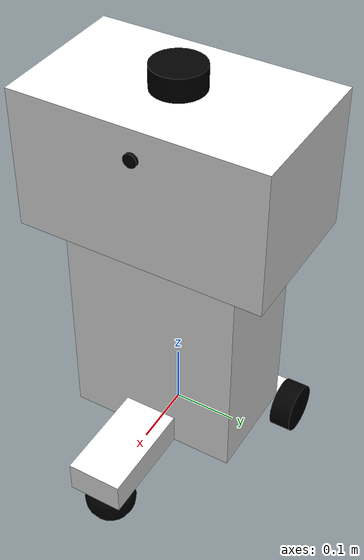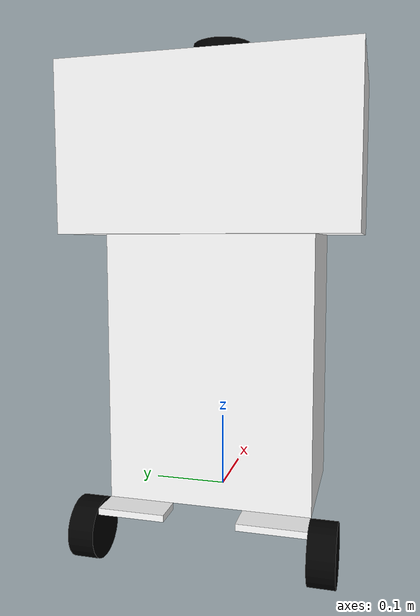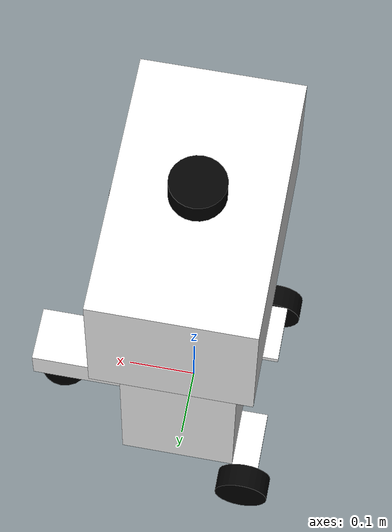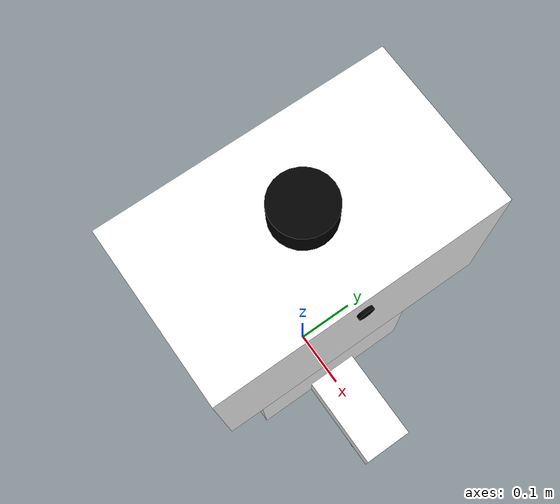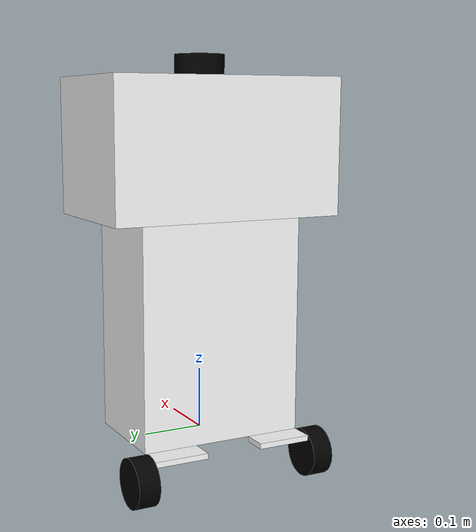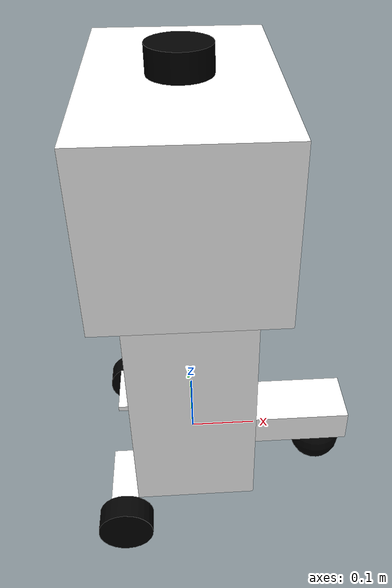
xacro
<?xml version="1.0" encoding="UTF-8"?>
<robot xmlns:xacro="http://wiki.ros.org/wiki/xacro" name="robot">

   <!-- args -->
   <xacro:arg name="use_ros2_control" default="true"/>
   <xacro:arg name="sim_mode" default="false"/>

   <!-- initialize xacro properties -->
   <xacro:include filename="inertial_macros.xacro"/>
   <xacro:include filename="properties.xacro"/>

   <!-- initialize robot URDF -->
   <xacro:include filename="robot_core.xacro"/>

   <!-- initialize ros2_control -->
   <xacro:if value="$(arg use_ros2_control)">
      <xacro:include filename="ros2_control.xacro"/>
   </xacro:if>
   <xacro:unless value="$(arg use_ros2_control)">
      <xacro:include filename="gazebo_control.xacro"/>
   </xacro:unless>

   <!-- initialize sensors -->
   <xacro:include filename="lidar.xacro"/>
   <xacro:include filename="camera.xacro"/>

</robot>

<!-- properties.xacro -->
<robot xmlns:xacro="http://www.ros.org/wiki/xacro">

   <!-- CHASSIS -->
   <xacro:property name="chassis_length" value="0.170"/>
   <xacro:property name="chassis_width" value="0.275"/>
   <xacro:property name="chassis_height" value="0.36"/>
   <xacro:property name="chassis_mass" value="3.0"/>

   <!-- HEAD -->
   <xacro:property name="head_length" value="0.230"/>
   <xacro:property name="head_width" value="0.385"/>
   <xacro:property name="head_height" value="0.220"/>
   <xacro:property name="head_mass" value="0.425"/>

      <!-- FRONT CASTER PLATFORM -->
   <xacro:property name="front_caster_holder_length" value="0.160"/>
   <xacro:property name="front_caster_holder_width" value="0.085"/>
   <xacro:property name="front_caster_holder_height" value="0.050"/>
   <xacro:property name="front_caster_holder_mass" value="0.35"/>

   <!-- BACK CASTER PLATFORM -->
   <xacro:property name="back_wheel_holder_length" value="0.040"/>
   <xacro:property name="back_wheel_holder_width" value="0.090"/>
   <xacro:property name="back_wheel_holder_height" value="0.009"/>
   <xacro:property name="back_wheel_holder_mass" value="0.2235"/>

   <!-- WHEELS -->
   <xacro:property name="wheel_radius" value="0.04"/>
   <xacro:property name="wheel_thickness" value="0.035"/>
   <xacro:property name="wheel_mass" value="0.15"/>
   <xacro:property name="wheel_offset_x" value="${(chassis_length + back_wheel_holder_length)/2}"/>
   <xacro:property name="wheel_offset_y" value="${(chassis_width+wheel_thickness)/2}"/>
   <xacro:property name="wheel_offset_z" value="0.035"/>

   <!-- CASTER WHEELS -->
   <xacro:property name="caster_wheel_radius" value="0.04"/>
   <xacro:property name="caster_wheel_mass" value="0.1"/>
   <xacro:property name="caster_wheel_offset_x" value="${front_caster_holder_length - 0.04}"/>
   <xacro:property name="caster_wheel_offset_z" value="${wheel_offset_z - wheel_radius + caster_wheel_radius}"/>

   <!-- COLORS -->
   <material name="white">
      <color rgba="1 1 1 1"/>
   </material>

   <material name="black">
      <color rgba="0 0 0 1"/>
   </material>

   <material name="grey" >
        <color rgba="0.5725490196078431 0.5843137254901961 0.5686274509803921 1.0" />
    </material>

   <material name="bloodorange" >
    <color rgba="0.996078431372549 0.29411764705882354 0.011764705882352941 1.0" />
  </material>

</robot>

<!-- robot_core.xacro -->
<robot xmlns:xacro="http://wiki.ros.org/wiki/xacro">

   <!-- BASE LINK -->
   <link name="base_link"></link>

   <!-- BASE FOOTPRINT -->
   <joint name="base_footprint_joint" type="fixed">
      <parent link="base_link"/>
      <child link="base_footprint"/>
      <origin xyz="0 0 0" rpy="0 0 0"/>
   </joint>

   <link name="base_footprint"></link>

   <!-- CHASSIS -->
   <joint name="chassis_joint" type="fixed">
      <origin xyz="-${chassis_length/2} 0.0 0.0"/>
      <parent link="base_link"/>
      <child link="chassis"/>
   </joint>

   <link name="chassis">
      <visual>
         <origin xyz="${chassis_length/2} 0.0 ${chassis_height/2}"/>
         <geometry>
            <box size="${chassis_length} ${chassis_width} ${chassis_height}"/>
         </geometry>
         <material name="white"/>
      </visual>
      <collision>
         <origin xyz="${chassis_length/2} 0.0 ${chassis_height/2}"/>
         <geometry>
            <box size="${chassis_length} ${chassis_width} ${chassis_height}"/>
         </geometry>
      </collision>
      <xacro:inertial_box mass="2" x="${chassis_length}" y="${chassis_width}" z="${chassis_height}">
         <origin xyz="${chassis_length} 0.0 ${chassis_height/2}" rpy="0.0 0.0 0.0"/>
      </xacro:inertial_box>
   </link>

   <gazebo reference="chassis">
      <material>Gazebo/White</material>
   </gazebo>

   <joint name="head_joint" type="fixed">
      <origin xyz="${chassis_length/2} 0.0 ${chassis_height + (head_height/2)}"/>
      <parent link="chassis"/>
      <child link="head"/>
   </joint>

   <link name="head">
      <visual>
         <origin xyz="0.0 0.0 0.0"/>
         <geometry>
            <box size="${head_length} ${head_width} ${head_height}"/>
         </geometry>
         <material name="white"/>
      </visual>
      <collision>
         <origin xyz="0.0 0.0 0.0"/>
         <geometry>
            <box size="${head_length} ${head_width} ${head_height}"/>
         </geometry>
      </collision>
      <xacro:inertial_box mass="2" x="${head_length}" y="${head_width}" z="${head_height}">
         <origin xyz="0.0 0.0 0.0" rpy="0.0 0.0 0.0"/>
      </xacro:inertial_box>
   </link>

   <gazebo reference="head">
      <material>Gazebo/White</material>
   </gazebo>

   <joint name="front_caster_holder_joint" type="fixed">
      <origin xyz="${chassis_length} 0.0 0.0"/>
      <parent link="chassis"/>
      <child link="front_caster_holder"/>
   </joint>

   <link name="front_caster_holder">
      <visual>
         <origin xyz="${front_caster_holder_length/2} 0.0 ${front_caster_holder_height/2}"/>
         <geometry>
            <box size="${front_caster_holder_length} ${front_caster_holder_width} ${front_caster_holder_height}"/>
         </geometry>
         <material name="white"/>
      </visual>
      <collision>
         <origin xyz="${front_caster_holder_length/2} 0.0 ${front_caster_holder_height/2}"/>
         <geometry>
            <box size="${front_caster_holder_length} ${front_caster_holder_width} ${front_caster_holder_height}"/>
         </geometry>
      </collision>
      <xacro:inertial_box mass="${front_caster_holder_mass}" x="${front_caster_holder_length}" y="${front_caster_holder_width}" z="${front_caster_holder_height}">
         <origin xyz="${front_caster_holder_length/2} 0.0 ${front_caster_holder_height/2}"/>
      </xacro:inertial_box>
   </link>

   <gazebo reference="front_caster_holder">
      <material>Gazebo/White</material>
   </gazebo>

   <joint name="left_back_wheel_holder_joint" type="fixed">
      <origin xyz="0.0 ${chassis_width/2} 0.0"/>
      <parent link="chassis"/>
      <child link="left_back_caster_holder"/>
   </joint>

   <link name="left_back_caster_holder">
      <visual>
         <origin xyz="-${back_wheel_holder_length/2} -${back_wheel_holder_width/2} -${back_wheel_holder_height/2}"/>
         <geometry>
            <box size="${back_wheel_holder_length} ${back_wheel_holder_width} ${back_wheel_holder_height}"/>
         </geometry>
         <material name="white"/>
      </visual>
      <collision>
         <origin xyz="-${back_wheel_holder_length/2} -${back_wheel_holder_width/2} -${back_wheel_holder_height/2}"/>
         <geometry>
            <box size="${back_wheel_holder_length} ${back_wheel_holder_width} ${back_wheel_holder_height}"/>
         </geometry>
      </collision>
      <xacro:inertial_box mass="${back_wheel_holder_mass}" x="${back_wheel_holder_length}" y="${back_wheel_holder_width}" z="${back_wheel_holder_height}">
         <origin xyz="-${back_wheel_holder_length/2} -${back_wheel_holder_width/2} ${back_wheel_holder_height/2}" rpy="0.0 0.0 0.0"/>
      </xacro:inertial_box>
   </link>

   <gazebo reference="left_back_caster_holder">
      <material>Gazebo/White</material>
   </gazebo>

   <joint name="right_back_caster_holder_joint" type="fixed">
      <origin xyz="0.0 -${chassis_width/2} 0.0"/>
      <parent link="chassis"/>
      <child link="right_back_caster_holder"/>
   </joint>

   <link name="right_back_caster_holder">
      <visual>
         <origin xyz="-${back_wheel_holder_length/2} ${back_wheel_holder_width/2} -${back_wheel_holder_height/2}"/>
         <geometry>
            <box size="${back_wheel_holder_length} ${back_wheel_holder_width} ${back_wheel_holder_height}"/>
         </geometry>
         <material name="white"/>
      </visual>
      <collision>
         <origin xyz="-${back_wheel_holder_length/2} ${back_wheel_holder_width/2} -${back_wheel_holder_height/2}"/>
         <geometry>
            <box size="${back_wheel_holder_length} ${back_wheel_holder_width} ${back_wheel_holder_height}"/>
         </geometry>
      </collision>
      <xacro:inertial_box mass="${back_wheel_holder_mass}" x="${back_wheel_holder_length}" y="${back_wheel_holder_width}" z="${back_wheel_holder_height}">
         <origin xyz="-${back_wheel_holder_length/2} ${back_wheel_holder_width/2} ${back_wheel_holder_height/2}" rpy="0.0 0.0 0.0"/>
      </xacro:inertial_box>
   </link>

   <gazebo reference="right_back_caster_holder">
      <material>Gazebo/White</material>
   </gazebo>

   <!-- WHEELS -->

   <joint name="left_wheel_joint" type="continuous">
      <parent link="base_link"/>
      <child link="left_wheel"/>
      <origin xyz="-${wheel_offset_x} ${wheel_offset_y} -${wheel_offset_z}" rpy="-${pi/2} 0 0"/>
      <axis xyz="0.0 0.0 1"/>
   </joint>

   <link name="left_wheel">
      <visual>
         <geometry>
            <cylinder radius="${wheel_radius}" length="${wheel_thickness}"/>
         </geometry>
         <material name="black"/>
      </visual>
      <collision>
         <geometry>
            <sphere radius="${wheel_radius}"/>
         </geometry>
         <material name="orange"/>
      </collision>
      <xacro:inertial_cylinder mass="${wheel_mass}" length="${wheel_thickness}" radius="${wheel_radius}">
         <origin xyz="0.0 0.0 0.0" rpy="0.0 0.0 0.0"/>
      </xacro:inertial_cylinder>
   </link>

   <gazebo reference="left_wheel">
      <material>Gazebo/Black</material>
   </gazebo>

   <joint name="right_wheel_joint" type="continuous">
      <parent link="base_link"/>
      <child link="right_wheel"/>
      <origin xyz="-${wheel_offset_x} -${wheel_offset_y} -${wheel_offset_z}" rpy="${pi/2} 0 0"/>
      <axis xyz="0.0 0.0 -1"/>
   </joint>

   <link name="right_wheel">
      <visual>
         <geometry>
            <cylinder radius="${wheel_radius}" length="${wheel_thickness}"/>
         </geometry>
         <material name="black"/>
      </visual>
      <collision>
         <geometry>
            <sphere radius="${wheel_radius}"/>
         </geometry>
         <material name="bloodorange"/>
      </collision>
       <xacro:inertial_cylinder mass="${wheel_mass}" length="${wheel_thickness}" radius="${wheel_radius}">
         <origin xyz="0.0 0.0 0.0" rpy="0.0 0.0 0.0"/>
      </xacro:inertial_cylinder>
   </link>

   <gazebo reference="right_wheel">
      <material>Gazebo/Black</material>
   </gazebo>

   <!-- CASTER WHEELS -->
   <joint name="front_caster_wheel_joint" type="fixed">
      <parent link="front_caster_holder"/>
      <child link="front_caster_wheel"/>
      <origin xyz="${caster_wheel_offset_x} 0.0 -${caster_wheel_offset_z}"/>
   </joint>

   <link name="front_caster_wheel">
      <visual>
         <origin xyz="0.0 0.0 0.0"/>
         <geometry>
            <sphere radius="${caster_wheel_radius}"/>
         </geometry>
         <material name="black"/>
      </visual>
      <collision>
         <origin xyz="0.0 0.0 0.0"/>
         <geometry>
            <sphere radius="${caster_wheel_radius}"/>
         </geometry>
      </collision>
      <xacro:inertial_sphere mass="${caster_wheel_mass}" radius="${caster_wheel_radius}">
         <origin xyz="0.0 0.0 0.0" rpy="0.0 0.0 0.0"/>
      </xacro:inertial_sphere>
   </link>

   <gazebo reference="front_caster_wheel">
      <material>Gazebo/Black</material>
      <mu1 value="0.001"/>
      <mu2 value="0.001"/>

   </gazebo>

</robot>

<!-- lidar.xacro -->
<robot xmlns:xacro="http://www.ros.org/wiki/xacro">

   <joint name="laser_joint" type="fixed">
      <parent link="chassis"/>
      <child link="laser_frame"/>
      <origin xyz="${chassis_length/2} 0 ${chassis_height + head_height + (wheel_thickness/2)}"/>
   </joint>

   <link name="laser_frame">
      <visual>
         <geometry>
            <cylinder radius="0.04" length="0.035"/>
         </geometry>
         <material name="black"/>
      </visual>
      <collision>
         <geometry>
            <cylinder radius="0.04" length="0.035"/>
         </geometry>
      </collision>
       <xacro:inertial_cylinder mass="0.170" length="0.035" radius="0.04">
         <origin xyz="0.0 0.0 0.0" rpy="0.0 0.0 0.0"/>
      </xacro:inertial_cylinder>
   </link>

   <gazebo reference="laser_frame">
      <material>Gazebo/Black</material>
      <sensor name="laser" type="ray">
         <pose>0 0 0 0 0 0</pose>
         <visualize>false</visualize>
         <update_rate>10</update_rate>
         <ray>
            <scan>
               <horizontal>
                  <sample>360</sample>
                  <min_angle>-3.14</min_angle>
                  <max_angle>3.14</max_angle>
               </horizontal>
            </scan>
            <range>
               <min>0.3</min>
               <max>12</max>
            </range>
         </ray>
         <plugin name="laser_controller" filename="libgazebo_ros_ray_sensor.so">
            <ros>
               <remapping>~/out:=scan</remapping>
            </ros>
            <output_type>sensor_msgs/LaserScan</output_type>
            <frame_name>laser_frame</frame_name>
         </plugin>
      </sensor>
   </gazebo>

</robot>

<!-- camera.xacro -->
<robot xmlns:xacro="http://www.ros.org/wiki/xacro">

   <joint name="camera_joint" type="fixed">
      <parent link="chassis"/>
      <child link="camera_link"/>
      <origin xyz="${(chassis_length+head_length)/2} 0.0 ${chassis_height + (head_height * 0.8)}"/>
   </joint>

   <link name="camera_link">
      <visual>
         <origin xyz="${0.005/2} 0 0" rpy="0 ${pi/2} 0"/>
         <geometry>
            <cylinder radius="0.0105" length="0.005"/>
         </geometry>
         <material name="black"/>
      </visual>
      <collision>
         <origin xyz="${0.005/2} 0 0" rpy="0 ${pi/2} 0"/>
         <geometry>
            <cylinder radius="0.0105" length="0.005"/>
         </geometry>
      </collision>
      <xacro:inertial_cylinder mass="0.093" length="0.005" radius="0.0105">
         <origin xyz="${0.005/2} 0 0" rpy="0 ${pi/2} 0"/>
      </xacro:inertial_cylinder>
   </link>

   <joint name="camera_joint_optical" type="fixed">
      <parent link="camera_link"/>
      <child link="camera_link_optical"/>
      <origin xyz="0 0 0" rpy="-${pi/2} 0 -${pi/2}"/>
   </joint>

   <link name="camera_link_optical"></link>

   <gazebo reference="camera_link">
      <material>Gazebo/Black</material>
      <sensor name="camera" type="camera">
         <pose>0 0 0 0 0 0</pose>
         <visualize>true</visualize>
         <update_rate>24</update_rate>
         <camera>
            <horizontal_fov>1.5708</horizontal_fov>
            <image>
               <width>1280</width>
               <height>720</height>
               <format>R8G8B8</format>
            </image>
            <clip>
               <near>0.05</near>
               <far>8.0</far>
            </clip>
         </camera>
         <plugin name="camera_controller" filename="libgazebo_ros_camera.so">
            <frame_name>camera_link_optical</frame_name>
         </plugin>
      </sensor>
   </gazebo>

</robot>
